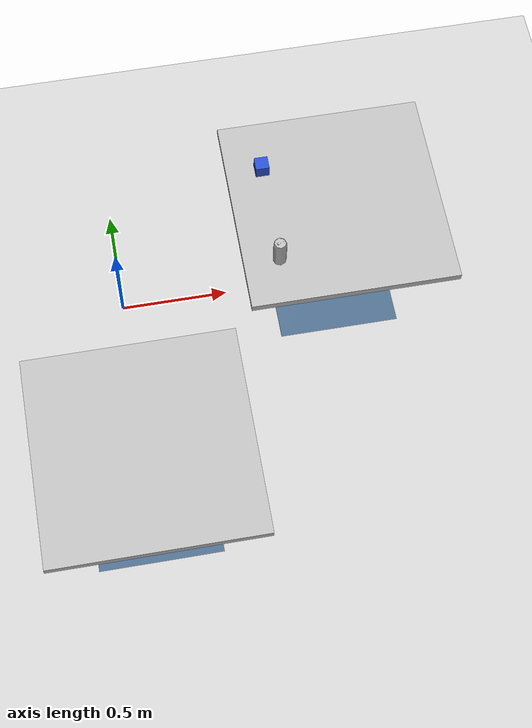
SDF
<sdf version="1.6">
 <world name="default">
  <model name="ground_plane">
   <static>1</static>
   <link name="link">
    <collision name="collision">
     <geometry><plane><normal>0 0 1</normal><size>100 100</size></plane></geometry>
     <surface>
      <contact><collide_bitmask>65535</collide_bitmask></contact>
      <friction><ode><mu>100</mu><mu2>50</mu2></ode></friction>
     </surface>
    </collision>
    <visual name="visual">
     <cast_shadows>0</cast_shadows>
     <geometry><plane><normal>0 0 1</normal><size>100 100</size></plane></geometry>
     <material>
      <script><uri>file://media/materials/scripts/gazebo.material</uri><name>Gazebo/Grey</name></script>
     </material>
    </visual>
   </link>
  </model>
  <light name="sun" type="directional">
   <pose>0 0 10 0 -0 0</pose>
   <diffuse>0.8 0.8 0.8 1</diffuse>
   <specular>0.2 0.2 0.2 1</specular>
   <attenuation>
    <range>1000</range>
    <constant>0.9</constant>
    <linear>0.01</linear>
    <quadratic>0.001</quadratic>
   </attenuation>
   <direction>-0.5 0.1 -0.9</direction>
  </light>
  <gravity>0 0 -9.8</gravity>
  <magnetic_field>6e-06 2.3e-05 -4.2e-05</magnetic_field>
  <atmosphere type="adiabatic"/>
  <physics name="default_physics" default="0" type="ode">
   <max_step_size>0.001</max_step_size>
   <real_time_factor>1</real_time_factor>
   <real_time_update_rate>1000</real_time_update_rate>
  </physics>
  <scene><ambient>0.4 0.4 0.4 1</ambient><background>0.7 0.7 0.7 1</background><shadows>1</shadows></scene>
  <audio><device>default</device></audio>
  <spherical_coordinates>
   <surface_model>EARTH_WGS84</surface_model>
   <latitude_deg>0</latitude_deg>
   <longitude_deg>0</longitude_deg>
   <elevation>0</elevation>
   <heading_deg>0</heading_deg>
  </spherical_coordinates>
  <model name="cafe_table">
   <static>1</static>
   <link name="link">
    <collision name="surface">
     <pose>0 0 0.70 0 -0 0</pose>
     <geometry><box><size>0.913 0.913 0.04</size></box></geometry>
    </collision>
    <collision name="column">
     <pose>0 0 0.37 0 -0 0</pose>
     <geometry><box><size>0.042 0.042 0.66</size></box></geometry>
    </collision>
    <collision name="base">
     <pose>0 0 0.02 0 -0 0</pose>
     <geometry><box><size>0.56 0.56 0.04</size></box></geometry>
    </collision>
    <visual name="visual">
     <geometry><mesh><uri>model://cafe_table/meshes/cafe_table.dae</uri></mesh></geometry>
    </visual>
   </link>
   <pose>1 0 0 0 -0 0</pose>
  </model>
  <model name="cafe_table_0">
   <static>1</static>
   <link name="link">
    <collision name="surface">
     <pose>0 0 0.70 0 -0 0</pose>
     <geometry><box><size>0.913 0.913 0.04</size></box></geometry>
    </collision>
    <collision name="column">
     <pose>0 0 0.37 0 -0 0</pose>
     <geometry><box><size>0.042 0.042 0.66</size></box></geometry>
    </collision>
    <collision name="base">
     <pose>0 0 0.02 0 -0 0</pose>
     <geometry><box><size>0.56 0.56 0.04</size></box></geometry>
    </collision>
    <visual name="visual">
     <geometry><mesh><uri>model://cafe_table/meshes/cafe_table.dae</uri></mesh></geometry>
    </visual>
   </link>
   <pose>0 -1 0 0 -0 0</pose>
  </model>
  <model name="Coke">
   <static>0</static>
   <link name="body">
    <visual name="visual"><geometry><mesh><uri>model://Coke/meshes/coke.obj</uri></mesh></geometry></visual>
    <collision name="collision">
     <geometry><mesh><uri>model://Coke/meshes/coke.obj</uri></mesh></geometry>
    </collision>
    <inertial>
     <mass>1</mass>
     <inertia>
      <ixx>0.00336667</ixx>
      <iyy>0.000866667</iyy>
      <izz>0.00416667</izz>
      <ixy>0</ixy>
      <ixz>0</ixz>
      <iyz>0</iyz>
     </inertia>
    </inertial>
   </link>
   <pose>0.70 -0.25 0.7 0 -0 0</pose>
  </model>
  <model name="demo_cube">
   <static>0</static>
   <link name="link">
    <inertial>
     <mass>0.25</mass>
     <inertia><ixx>0.001</ixx><ixy>0</ixy><ixz>0</ixz><iyy>0.001</iyy><iyz>0</iyz><izz>0.001</izz></inertia>
    </inertial>
    <collision name="collision">
     <geometry><box><size>0.06 0.06 0.06</size></box></geometry>
     <surface>
      <friction><ode><mu>30</mu><mu2>30</mu2></ode></friction>
      <contact><ode><kp>1e+06</kp><kd>100</kd><max_vel>1</max_vel><min_depth>0.002</min_depth></ode></contact>
     </surface>
    </collision>
    <visual name="visual">
     <geometry><box><size>0.06 0.06 0.06</size></box></geometry>
     <material>
      <script><uri>file://media/materials/scripts/gazebo.material</uri><name>Gazebo/Blue</name></script>
     </material>
    </visual>
    <velocity_decay><linear>0</linear><angular>0</angular></velocity_decay>
   </link>
   <pose>0.70 0.20 0.747999 0 -0 0</pose>
  </model>
 </world>
</sdf>
